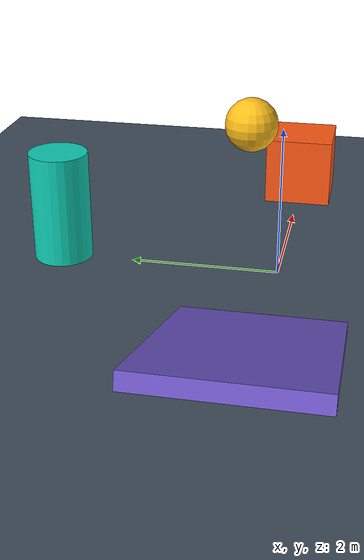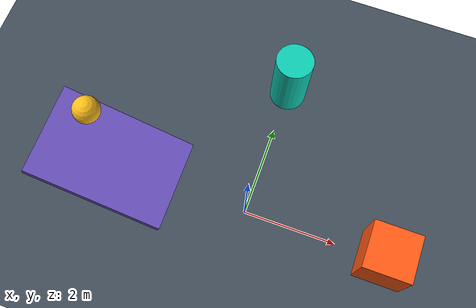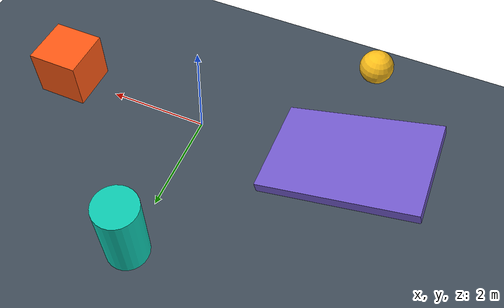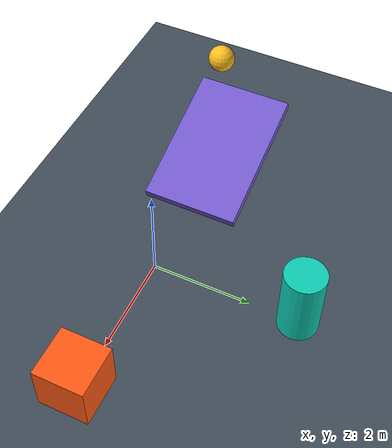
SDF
<?xml version="1.0"?>
<!-- Lesson 1: a standalone scene for learning SDF and basic physics. -->
<sdf version="1.10">
  <world name="robotics_playground">
    <!-- A simulation step is 0.001 seconds; gravity points down. -->
    <physics name="lesson_physics" type="ignored">
      <max_step_size>0.001</max_step_size>
      <real_time_factor>1.0</real_time_factor>
    </physics>
    <gravity>0 0 -9.81</gravity>
    <plugin filename="gz-sim-physics-system" name="gz::sim::systems::Physics"/>
    <plugin filename="gz-sim-user-commands-system" name="gz::sim::systems::UserCommands"/>
    <plugin filename="gz-sim-scene-broadcaster-system" name="gz::sim::systems::SceneBroadcaster"/>
    <scene>
      <ambient>0.5 0.5 0.5 1</ambient>
      <background>0.12 0.17 0.25 1</background>
      <shadows>true</shadows>
    </scene>
    <light name="sun" type="directional">
      <pose>0 0 10 0 0 0</pose>
      <diffuse>0.9 0.9 0.9 1</diffuse>
      <specular>0.2 0.2 0.2 1</specular>
      <direction>-0.5 0.2 -1</direction>
      <cast_shadows>true</cast_shadows>
    </light>

    <!-- MODEL: an object. LINK: one rigid body in that object.
         VISUAL: what you see. COLLISION: what physics can touch. -->
    <model name="ground">
      <static>true</static>
      <link name="body">
        <collision name="solid">
          <geometry><plane><normal>0 0 1</normal><size>24 24</size></plane></geometry>
        </collision>
        <visual name="appearance">
          <geometry><plane><normal>0 0 1</normal><size>24 24</size></plane></geometry>
          <material><ambient>0.25 0.3 0.35 1</ambient><diffuse>0.25 0.3 0.35 1</diffuse></material>
        </visual>
      </link>
    </model>

    <!-- Pose order: x y z roll pitch yaw. Metres, then radians.
         A 1 m cube centred at z=0.5 rests on the ground. -->
    <model name="orange_cube">
      <static>true</static>
      <pose>3 0 0.5 0 0 0</pose>
      <link name="body">
        <collision name="solid"><geometry><box><size>1 1 1</size></box></geometry></collision>
        <visual name="appearance">
          <geometry><box><size>1 1 1</size></box></geometry>
          <material><ambient>1 0.35 0.08 1</ambient><diffuse>1 0.35 0.08 1</diffuse></material>
        </visual>
      </link>
    </model>

    <model name="teal_column">
      <static>true</static>
      <pose>0 3 0.75 0 0 0</pose>
      <link name="body">
        <collision name="solid"><geometry><cylinder><radius>0.4</radius><length>1.5</length></cylinder></geometry></collision>
        <visual name="appearance">
          <geometry><cylinder><radius>0.4</radius><length>1.5</length></cylinder></geometry>
          <material><ambient>0.05 0.8 0.7 1</ambient><diffuse>0.05 0.8 0.7 1</diffuse></material>
        </visual>
      </link>
    </model>

    <!-- The ramp is a box tilted about the y axis. -->
    <model name="ramp">
      <static>true</static>
      <pose>-3 0 0.55 0 0.3 0</pose>
      <link name="body">
        <collision name="solid"><geometry><box><size>3 2 0.2</size></box></geometry></collision>
        <visual name="appearance">
          <geometry><box><size>3 2 0.2</size></box></geometry>
          <material><ambient>0.45 0.35 0.8 1</ambient><diffuse>0.45 0.35 0.8 1</diffuse></material>
        </visual>
      </link>
    </model>

    <!-- Surprise: this body is dynamic. Press Play to see it fall.
         Solid sphere: Ixx=Iyy=Izz=2*m*r^2/5=0.025 kg m^2. -->
    <model name="gold_ball">
      <static>false</static>
      <pose>-3 0 3 0 0 0</pose>
      <link name="body">
        <inertial>
          <mass>1</mass>
          <inertia><ixx>0.025</ixx><iyy>0.025</iyy><izz>0.025</izz><ixy>0</ixy><ixz>0</ixz><iyz>0</iyz></inertia>
        </inertial>
        <collision name="solid"><geometry><sphere><radius>0.25</radius></sphere></geometry></collision>
        <visual name="appearance">
          <geometry><sphere><radius>0.25</radius></sphere></geometry>
          <material><ambient>1 0.75 0.1 1</ambient><diffuse>1 0.75 0.1 1</diffuse></material>
        </visual>
      </link>
    </model>
  </world>
</sdf>
